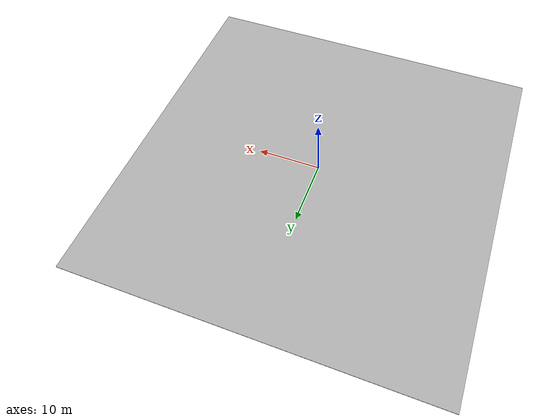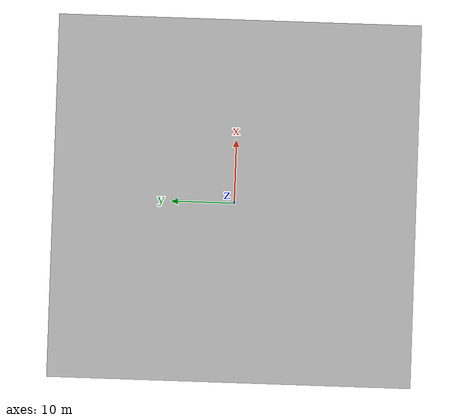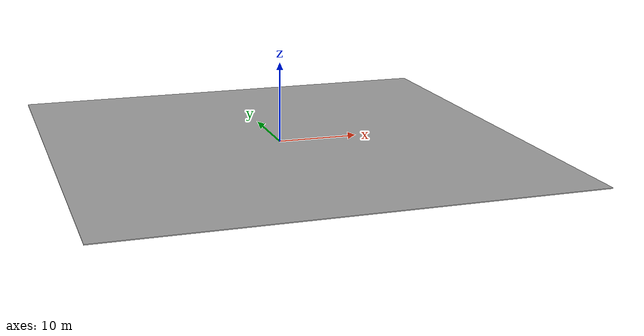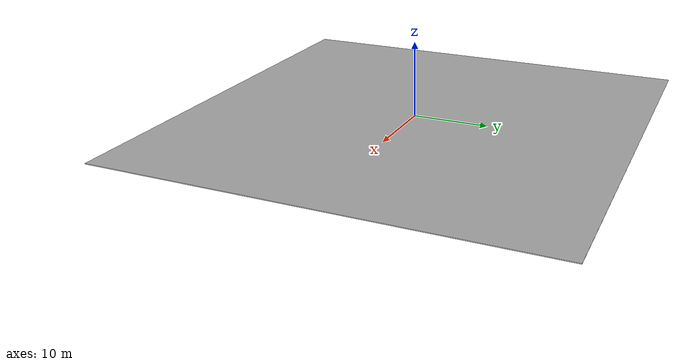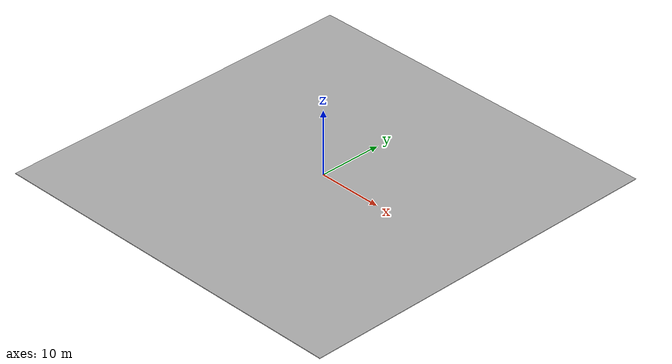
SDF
<sdf version="1.6">
 <world name="default">
  <physics name="default_physics" default="0" type="ode">
   <ode>
    <solver>
     <type>quick</type>
     <iters>10</iters>
     <sor>1.3</sor>
     <use_dynamic_moi_rescaling>0</use_dynamic_moi_rescaling>
    </solver>
    <constraints>
     <cfm>0</cfm>
     <erp>0.2</erp>
     <contact_max_correcting_vel>100</contact_max_correcting_vel>
     <contact_surface_layer>0.001</contact_surface_layer>
    </constraints>
   </ode>
   <max_step_size>0.002</max_step_size>
   <real_time_update_rate>500</real_time_update_rate>
   <real_time_factor>1</real_time_factor>
  </physics>
  <light name="sun" type="directional">
   <pose>0 0 10 0 -0 0</pose>
   <diffuse>0.8 0.8 0.8 1</diffuse>
   <specular>0.2 0.2 0.2 1</specular>
   <attenuation>
    <range>1000</range>
    <constant>0.9</constant>
    <linear>0.01</linear>
    <quadratic>0.001</quadratic>
   </attenuation>
   <direction>-0.5 0.1 -0.9</direction>
  </light>
  <model name="basketball_court">
   <pose>0.4 0 0 0 -0 1.5708</pose>
   <static>1</static>
   <link name="floor">
    <collision name="collision"><geometry><box><size>57.5 57.5 0.1</size></box></geometry></collision>
    <visual name="visual">
     <cast_shadows>0</cast_shadows>
     <geometry><box><size>57.5 57.5 0.1</size></box></geometry>
     <material>
      <script>
       <uri>model://basketball_court/materials/scripts</uri>
       <uri>model://basketball_court/materials/textures</uri>
       <name>basketball_court</name>
      </script>
     </material>
    </visual>
   </link>
  </model>
  <gravity>0 0 -9.8</gravity>
  <magnetic_field>6e-06 2.3e-05 -4.2e-05</magnetic_field>
  <atmosphere type="adiabatic"/>
  <scene><ambient>0.4 0.4 0.4 1</ambient><background>0.7 0.7 0.7 1</background><shadows>1</shadows></scene>
  <spherical_coordinates>
   <surface_model>EARTH_WGS84</surface_model>
   <latitude_deg>0</latitude_deg>
   <longitude_deg>0</longitude_deg>
   <elevation>0</elevation>
   <heading_deg>0</heading_deg>
  </spherical_coordinates>
 </world>
</sdf>
